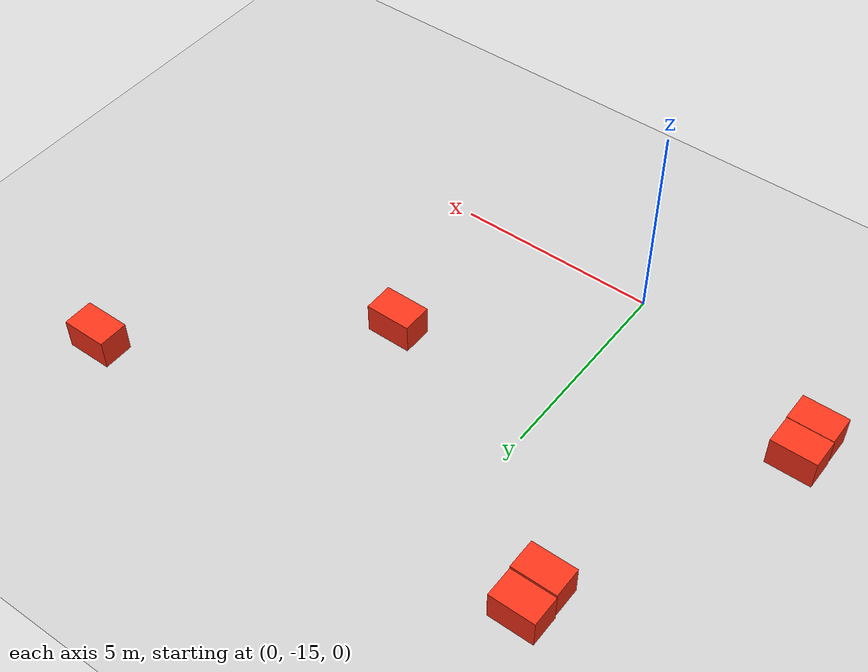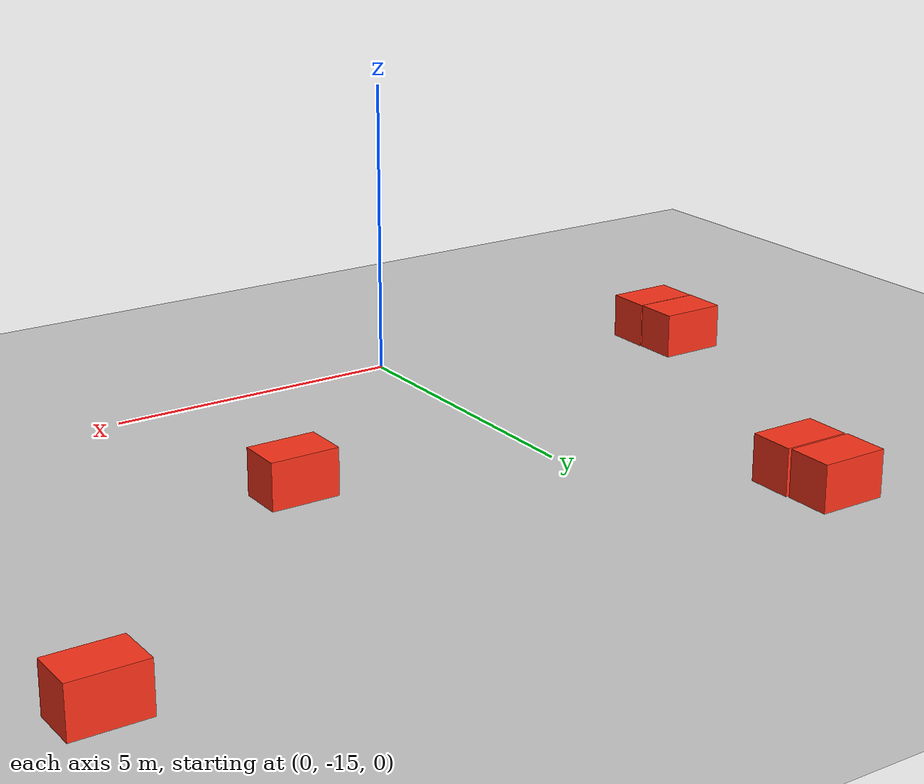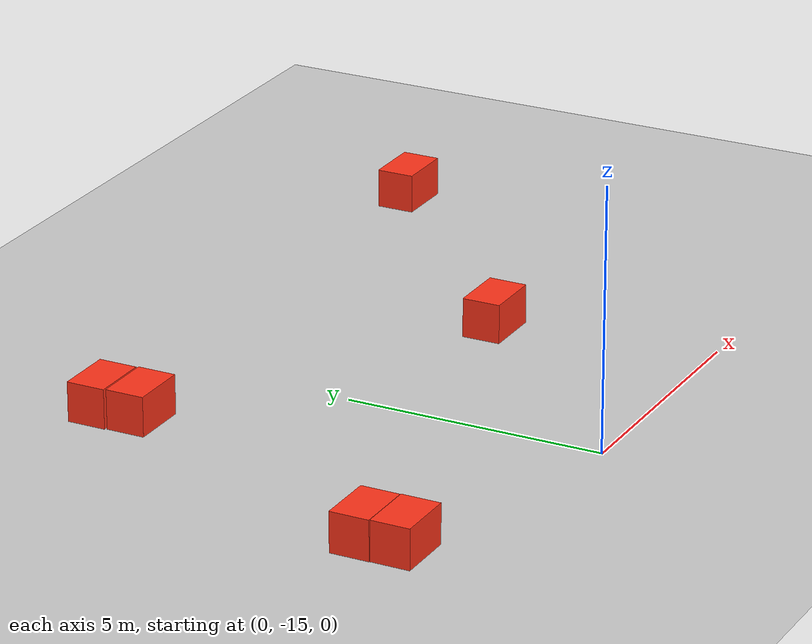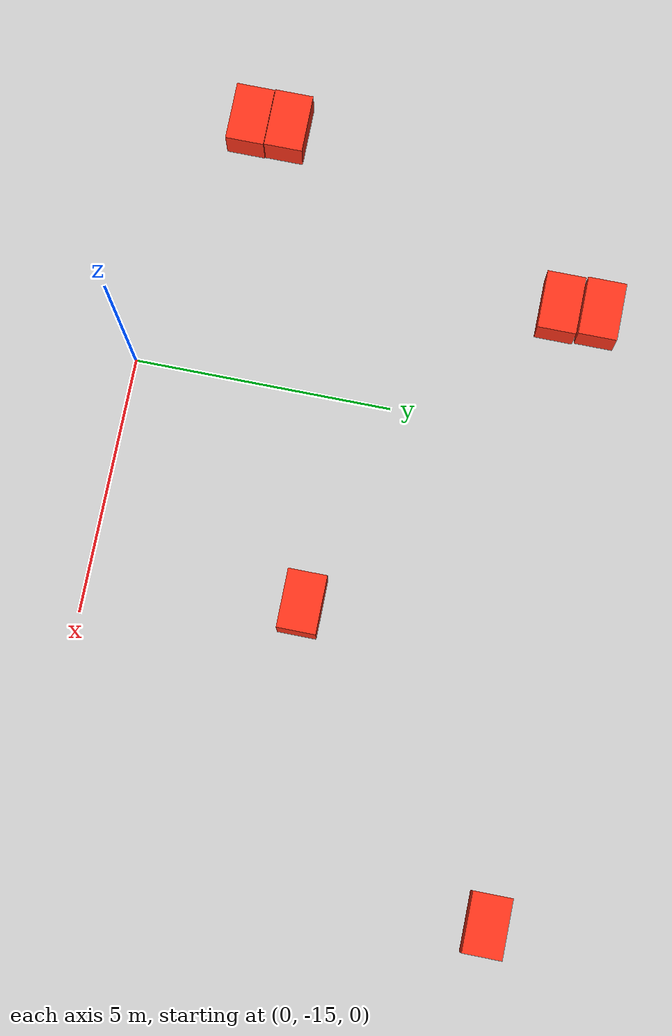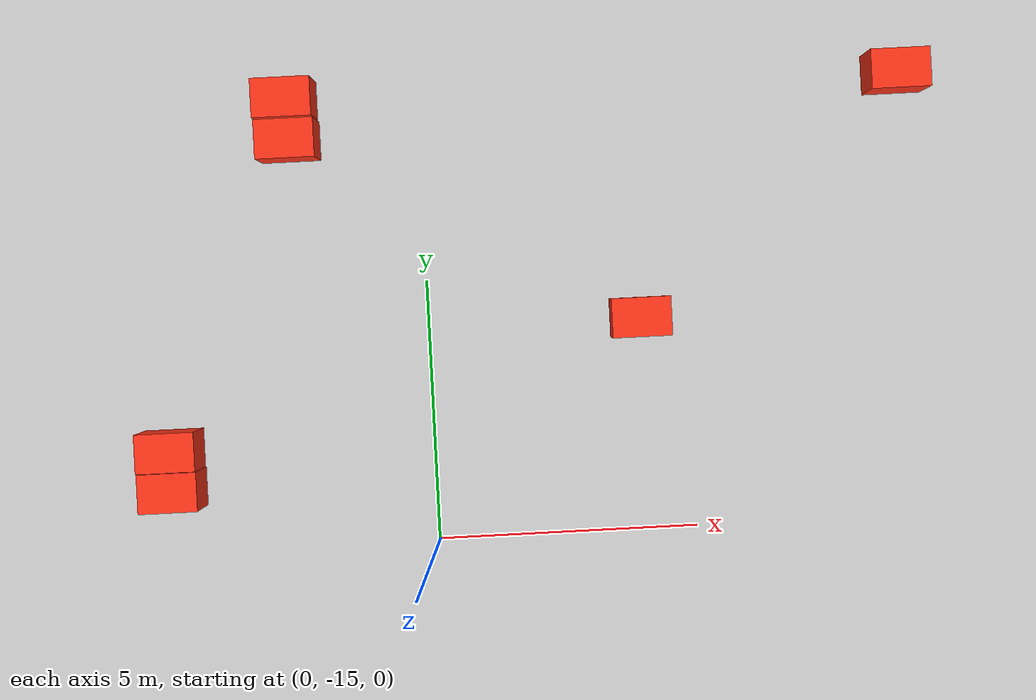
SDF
<sdf version="1.7">
 <world name="default">
  <model name="ground_plane">
   <static>1</static>
   <link name="link">
    <collision name="collision">
     <geometry><plane><normal>0 0 1</normal><size>100 100</size></plane></geometry>
     <surface>
      <contact><collide_bitmask>65535</collide_bitmask></contact>
      <friction><ode><mu>100</mu><mu2>50</mu2></ode></friction>
     </surface>
    </collision>
    <visual name="visual">
     <cast_shadows>0</cast_shadows>
     <geometry><plane><normal>0 0 1</normal><size>100 100</size></plane></geometry>
     <material>
      <script><uri>file://media/materials/scripts/gazebo.material</uri><name>Gazebo/Grey</name></script>
     </material>
    </visual>
   </link>
  </model>
  <model name="payload_box_clone_5">
   <link name="link">
    <inertial>
     <mass>15</mass>
     <inertia><ixx>2.32332</ixx><ixy>0</ixy><ixz>0</ixz><iyy>1.43272</iyy><iyz>0</iyz><izz>2.2858</izz></inertia>
    </inertial>
    <visual name="visual">
     <geometry><box><size>0.747047 1.12719 0.766877</size></box></geometry>
     <material>
      <script><name>Gazebo/Grey</name><uri>file://media/materials/scripts/gazebo.material</uri></script>
      <shader type="pixel"><normal_map>__default__</normal_map></shader>
      <ambient>1 0.2 0.1 0</ambient>
      <diffuse>0.7 0.7 0.7 1</diffuse>
      <specular>0.01 0.01 0.01 1</specular>
      <emissive>0 0 0 1</emissive>
     </material>
    </visual>
    <collision name="collision">
     <geometry><box><size>0.747047 1.12719 0.766877</size></box></geometry>
     <surface>
      <friction>
       <ode><mu>1</mu><mu2>1</mu2><fdir1>0 0 0</fdir1><slip1>0</slip1><slip2>0</slip2></ode>
       <torsional>
        <coefficient>1</coefficient>
        <patch_radius>0</patch_radius>
        <surface_radius>0</surface_radius>
        <use_patch_radius>1</use_patch_radius>
        <ode><slip>0</slip></ode>
       </torsional>
      </friction>
      <bounce><restitution_coefficient>0</restitution_coefficient><threshold>1e+06</threshold></bounce>
      <contact>
       <collide_without_contact>0</collide_without_contact>
       <collide_without_contact_bitmask>1</collide_without_contact_bitmask>
       <collide_bitmask>1</collide_bitmask>
       <ode>
        <soft_cfm>0</soft_cfm>
        <soft_erp>0.2</soft_erp>
        <kp>1e+13</kp>
        <kd>1</kd>
        <max_vel>0.01</max_vel>
        <min_depth>0</min_depth>
       </ode>
       <bullet>
        <split_impulse>1</split_impulse>
        <split_impulse_penetration_threshold>-0.01</split_impulse_penetration_threshold>
        <soft_cfm>0</soft_cfm>
        <soft_erp>0.2</soft_erp>
        <kp>1e+13</kp>
        <kd>1</kd>
       </bullet>
      </contact>
     </surface>
    </collision>
   </link>
   <static>0</static>
   <pose>-5.04823 -13.7583 0.383438 0 -0 1.5709</pose>
  </model>
  <model name="payload_box_clone_5_clone">
   <link name="link">
    <inertial>
     <mass>15</mass>
     <inertia><ixx>2.32332</ixx><ixy>0</ixy><ixz>0</ixz><iyy>1.43272</iyy><iyz>0</iyz><izz>2.2858</izz></inertia>
    </inertial>
    <visual name="visual">
     <geometry><box><size>0.747047 1.12719 0.766877</size></box></geometry>
     <material>
      <script><name>Gazebo/Grey</name><uri>file://media/materials/scripts/gazebo.material</uri></script>
      <shader type="pixel"><normal_map>__default__</normal_map></shader>
      <ambient>1 0.2 0.1 0</ambient>
      <diffuse>0.7 0.7 0.7 1</diffuse>
      <specular>0.01 0.01 0.01 1</specular>
      <emissive>0 0 0 1</emissive>
     </material>
    </visual>
    <collision name="collision">
     <geometry><box><size>0.747047 1.12719 0.766877</size></box></geometry>
     <surface>
      <friction>
       <ode><mu>1</mu><mu2>1</mu2><fdir1>0 0 0</fdir1><slip1>0</slip1><slip2>0</slip2></ode>
       <torsional>
        <coefficient>1</coefficient>
        <patch_radius>0</patch_radius>
        <surface_radius>0</surface_radius>
        <use_patch_radius>1</use_patch_radius>
        <ode><slip>0</slip></ode>
       </torsional>
      </friction>
      <bounce><restitution_coefficient>0</restitution_coefficient><threshold>1e+06</threshold></bounce>
      <contact>
       <collide_without_contact>0</collide_without_contact>
       <collide_without_contact_bitmask>1</collide_without_contact_bitmask>
       <collide_bitmask>1</collide_bitmask>
       <ode>
        <soft_cfm>0</soft_cfm>
        <soft_erp>0.2</soft_erp>
        <kp>1e+13</kp>
        <kd>1</kd>
        <max_vel>0.01</max_vel>
        <min_depth>0</min_depth>
       </ode>
       <bullet>
        <split_impulse>1</split_impulse>
        <split_impulse_penetration_threshold>-0.01</split_impulse_penetration_threshold>
        <soft_cfm>0</soft_cfm>
        <soft_erp>0.2</soft_erp>
        <kp>1e+13</kp>
        <kd>1</kd>
       </bullet>
      </contact>
     </surface>
    </collision>
   </link>
   <static>0</static>
   <pose>-5.06235 -13.0022 0.383438 0 -0 1.5709</pose>
  </model>
  <model name="payload_box_clone_5_clone_0">
   <link name="link">
    <inertial>
     <mass>15</mass>
     <inertia><ixx>2.32332</ixx><ixy>0</ixy><ixz>0</ixz><iyy>1.43272</iyy><iyz>0</iyz><izz>2.2858</izz></inertia>
    </inertial>
    <visual name="visual">
     <geometry><box><size>0.747047 1.12719 0.766877</size></box></geometry>
     <material>
      <script><name>Gazebo/Grey</name><uri>file://media/materials/scripts/gazebo.material</uri></script>
      <shader type="pixel"><normal_map>__default__</normal_map></shader>
      <ambient>1 0.2 0.1 0</ambient>
      <diffuse>0.7 0.7 0.7 1</diffuse>
      <specular>0.01 0.01 0.01 1</specular>
      <emissive>0 0 0 1</emissive>
     </material>
    </visual>
    <collision name="collision">
     <geometry><box><size>0.747047 1.12719 0.766877</size></box></geometry>
     <surface>
      <friction>
       <ode><mu>1</mu><mu2>1</mu2><fdir1>0 0 0</fdir1><slip1>0</slip1><slip2>0</slip2></ode>
       <torsional>
        <coefficient>1</coefficient>
        <patch_radius>0</patch_radius>
        <surface_radius>0</surface_radius>
        <use_patch_radius>1</use_patch_radius>
        <ode><slip>0</slip></ode>
       </torsional>
      </friction>
      <bounce><restitution_coefficient>0</restitution_coefficient><threshold>1e+06</threshold></bounce>
      <contact>
       <collide_without_contact>0</collide_without_contact>
       <collide_without_contact_bitmask>1</collide_without_contact_bitmask>
       <collide_bitmask>1</collide_bitmask>
       <ode>
        <soft_cfm>0</soft_cfm>
        <soft_erp>0.2</soft_erp>
        <kp>1e+13</kp>
        <kd>1</kd>
        <max_vel>0.01</max_vel>
        <min_depth>0</min_depth>
       </ode>
       <bullet>
        <split_impulse>1</split_impulse>
        <split_impulse_penetration_threshold>-0.01</split_impulse_penetration_threshold>
        <soft_cfm>0</soft_cfm>
        <soft_erp>0.2</soft_erp>
        <kp>1e+13</kp>
        <kd>1</kd>
       </bullet>
      </contact>
     </surface>
    </collision>
   </link>
   <static>0</static>
   <pose>4.06717 -10.8872 0.383438 0 -0 1.5709</pose>
  </model>
  <model name="payload_box_clone_5_clone_3">
   <link name="link">
    <inertial>
     <mass>15</mass>
     <inertia><ixx>2.32332</ixx><ixy>0</ixy><ixz>0</ixz><iyy>1.43272</iyy><iyz>0</iyz><izz>2.2858</izz></inertia>
    </inertial>
    <visual name="visual">
     <geometry><box><size>0.747047 1.12719 0.766877</size></box></geometry>
     <material>
      <script><name>Gazebo/Grey</name><uri>file://media/materials/scripts/gazebo.material</uri></script>
      <shader type="pixel"><normal_map>__default__</normal_map></shader>
      <ambient>1 0.2 0.1 0</ambient>
      <diffuse>0.7 0.7 0.7 1</diffuse>
      <specular>0.01 0.01 0.01 1</specular>
      <emissive>0 0 0 1</emissive>
     </material>
    </visual>
    <collision name="collision">
     <geometry><box><size>0.747047 1.12719 0.766877</size></box></geometry>
     <surface>
      <friction>
       <ode><mu>1</mu><mu2>1</mu2><fdir1>0 0 0</fdir1><slip1>0</slip1><slip2>0</slip2></ode>
       <torsional>
        <coefficient>1</coefficient>
        <patch_radius>0</patch_radius>
        <surface_radius>0</surface_radius>
        <use_patch_radius>1</use_patch_radius>
        <ode><slip>0</slip></ode>
       </torsional>
      </friction>
      <bounce><restitution_coefficient>0</restitution_coefficient><threshold>1e+06</threshold></bounce>
      <contact>
       <collide_without_contact>0</collide_without_contact>
       <collide_without_contact_bitmask>1</collide_without_contact_bitmask>
       <collide_bitmask>1</collide_bitmask>
       <ode>
        <soft_cfm>0</soft_cfm>
        <soft_erp>0.2</soft_erp>
        <kp>1e+13</kp>
        <kd>1</kd>
        <max_vel>0.01</max_vel>
        <min_depth>0</min_depth>
       </ode>
       <bullet>
        <split_impulse>1</split_impulse>
        <split_impulse_penetration_threshold>-0.01</split_impulse_penetration_threshold>
        <soft_cfm>0</soft_cfm>
        <soft_erp>0.2</soft_erp>
        <kp>1e+13</kp>
        <kd>1</kd>
       </bullet>
      </contact>
     </surface>
    </collision>
   </link>
   <static>0</static>
   <pose>-2.54038 -6.392 0.383438 0 -0 1.5709</pose>
  </model>
  <model name="payload_box_clone_5_clone_4">
   <link name="link">
    <inertial>
     <mass>15</mass>
     <inertia><ixx>2.32332</ixx><ixy>0</ixy><ixz>0</ixz><iyy>1.43272</iyy><iyz>0</iyz><izz>2.2858</izz></inertia>
    </inertial>
    <visual name="visual">
     <geometry><box><size>0.747047 1.12719 0.766877</size></box></geometry>
     <material>
      <script><name>Gazebo/Grey</name><uri>file://media/materials/scripts/gazebo.material</uri></script>
      <shader type="pixel"><normal_map>__default__</normal_map></shader>
      <ambient>1 0.2 0.1 0</ambient>
      <diffuse>0.7 0.7 0.7 1</diffuse>
      <specular>0.01 0.01 0.01 1</specular>
      <emissive>0 0 0 1</emissive>
     </material>
    </visual>
    <collision name="collision">
     <geometry><box><size>0.747047 1.12719 0.766877</size></box></geometry>
     <surface>
      <friction>
       <ode><mu>1</mu><mu2>1</mu2><fdir1>0 0 0</fdir1><slip1>0</slip1><slip2>0</slip2></ode>
       <torsional>
        <coefficient>1</coefficient>
        <patch_radius>0</patch_radius>
        <surface_radius>0</surface_radius>
        <use_patch_radius>1</use_patch_radius>
        <ode><slip>0</slip></ode>
       </torsional>
      </friction>
      <bounce><restitution_coefficient>0</restitution_coefficient><threshold>1e+06</threshold></bounce>
      <contact>
       <collide_without_contact>0</collide_without_contact>
       <collide_without_contact_bitmask>1</collide_without_contact_bitmask>
       <collide_bitmask>1</collide_bitmask>
       <ode>
        <soft_cfm>0</soft_cfm>
        <soft_erp>0.2</soft_erp>
        <kp>1e+13</kp>
        <kd>1</kd>
        <max_vel>0.01</max_vel>
        <min_depth>0</min_depth>
       </ode>
       <bullet>
        <split_impulse>1</split_impulse>
        <split_impulse_penetration_threshold>-0.01</split_impulse_penetration_threshold>
        <soft_cfm>0</soft_cfm>
        <soft_erp>0.2</soft_erp>
        <kp>1e+13</kp>
        <kd>1</kd>
       </bullet>
      </contact>
     </surface>
    </collision>
   </link>
   <static>0</static>
   <pose>-2.51466 -7.17386 0.383438 0 -0 1.5709</pose>
  </model>
  <model name="payload_box_clone_5_clone_5">
   <link name="link">
    <inertial>
     <mass>15</mass>
     <inertia><ixx>2.32332</ixx><ixy>0</ixy><ixz>0</ixz><iyy>1.43272</iyy><iyz>0</iyz><izz>2.2858</izz></inertia>
    </inertial>
    <visual name="visual">
     <geometry><box><size>0.747047 1.12719 0.766877</size></box></geometry>
     <material>
      <script><name>Gazebo/Grey</name><uri>file://media/materials/scripts/gazebo.material</uri></script>
      <shader type="pixel"><normal_map>__default__</normal_map></shader>
      <ambient>1 0.2 0.1 0</ambient>
      <diffuse>0.7 0.7 0.7 1</diffuse>
      <specular>0.01 0.01 0.01 1</specular>
      <emissive>0 0 0 1</emissive>
     </material>
    </visual>
    <collision name="collision">
     <geometry><box><size>0.747047 1.12719 0.766877</size></box></geometry>
     <surface>
      <friction>
       <ode><mu>1</mu><mu2>1</mu2><fdir1>0 0 0</fdir1><slip1>0</slip1><slip2>0</slip2></ode>
       <torsional>
        <coefficient>1</coefficient>
        <patch_radius>0</patch_radius>
        <surface_radius>0</surface_radius>
        <use_patch_radius>1</use_patch_radius>
        <ode><slip>0</slip></ode>
       </torsional>
      </friction>
      <bounce><restitution_coefficient>0</restitution_coefficient><threshold>1e+06</threshold></bounce>
      <contact>
       <collide_without_contact>0</collide_without_contact>
       <collide_without_contact_bitmask>1</collide_without_contact_bitmask>
       <collide_bitmask>1</collide_bitmask>
       <ode>
        <soft_cfm>0</soft_cfm>
        <soft_erp>0.2</soft_erp>
        <kp>1e+13</kp>
        <kd>1</kd>
        <max_vel>0.01</max_vel>
        <min_depth>0</min_depth>
       </ode>
       <bullet>
        <split_impulse>1</split_impulse>
        <split_impulse_penetration_threshold>-0.01</split_impulse_penetration_threshold>
        <soft_cfm>0</soft_cfm>
        <soft_erp>0.2</soft_erp>
        <kp>1e+13</kp>
        <kd>1</kd>
       </bullet>
      </contact>
     </surface>
    </collision>
   </link>
   <static>0</static>
   <pose>9.18464 -6.43208 0.383438 0 -0 1.5709</pose>
  </model>
 </world>
</sdf>
